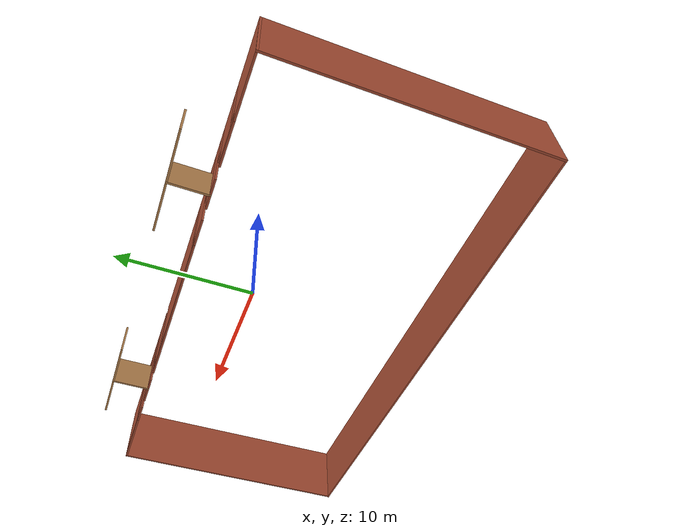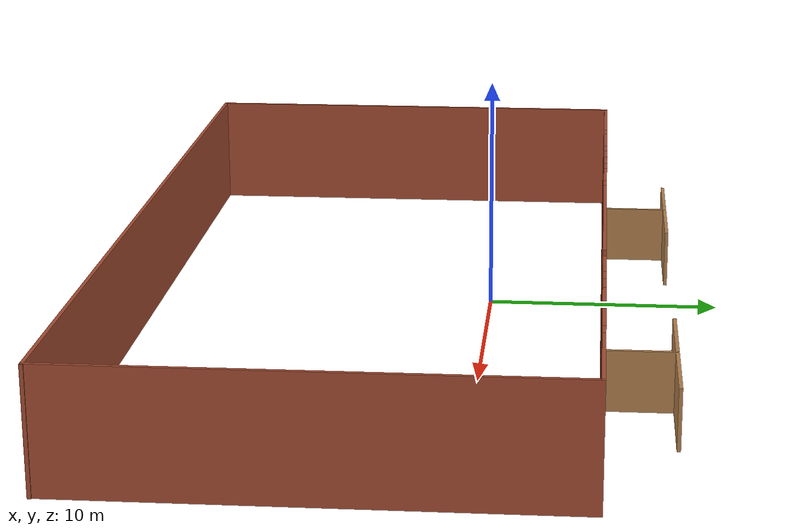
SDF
<?xml version='1.0'?>
<sdf version='1.7'>
  <model name='condos'>
    <pose>2.991 -3.50908 0 0 -0 0</pose>
    <link name='Wall_16'>
      <pose>-14.875 8.50008 0 0 -0 0</pose>
      <visual name='Wall_16_Visual_0'>
        <pose>-2.75921 0 2.5 0 -0 0</pose>
        <geometry>
          <box>
            <size>4.48157 0.15 5</size>
          </box>
        </geometry>
        <material>
          <script>
            <uri>file://media/materials/scripts/gazebo.material</uri>
            <name>Gazebo/Bricks</name>
          </script>
          <ambient>1 1 1 1</ambient>
        </material>
        <meta>
          <layer>0</layer>
        </meta>
      </visual>
      <collision name='Wall_16_Collision_0'>
        <geometry>
          <box>
            <size>4.48157 0.15 5</size>
          </box>
        </geometry>
        <pose>-2.75921 0 2.5 0 -0 0</pose>
      </collision>
      <visual name='Wall_16_Visual_1'>
        <pose>4.31466 0 2.5 0 -0 0</pose>
        <geometry>
          <box>
            <size>1.37068 0.15 5</size>
          </box>
        </geometry>
        <material>
          <script>
            <uri>file://media/materials/scripts/gazebo.material</uri>
            <name>Gazebo/Bricks</name>
          </script>
          <ambient>1 1 1 1</ambient>
        </material>
        <meta>
          <layer>0</layer>
        </meta>
      </visual>
      <collision name='Wall_16_Collision_1'>
        <geometry>
          <box>
            <size>1.37068 0.15 5</size>
          </box>
        </geometry>
        <pose>4.31466 0 2.5 0 -0 0</pose>
      </collision>
      <visual name='Wall_16_Visual_2'>
        <pose>1.10545 0 0.25 0 -0 0</pose>
        <geometry>
          <box>
            <size>3.24775 0.15 0.5</size>
          </box>
        </geometry>
        <material>
          <script>
            <uri>file://media/materials/scripts/gazebo.material</uri>
            <name>Gazebo/Bricks</name>
          </script>
          <ambient>1 1 1 1</ambient>
        </material>
        <meta>
          <layer>0</layer>
        </meta>
      </visual>
      <collision name='Wall_16_Collision_2'>
        <geometry>
          <box>
            <size>3.24775 0.15 0.5</size>
          </box>
        </geometry>
        <pose>1.10545 0 0.25 0 -0 0</pose>
      </collision>
      <visual name='Wall_16_Visual_3'>
        <pose>1.50545 0 2.75 0 -0 0</pose>
        <geometry>
          <box>
            <size>2.44775 0.15 4.5</size>
          </box>
        </geometry>
        <material>
          <script>
            <uri>file://media/materials/scripts/gazebo.material</uri>
            <name>Gazebo/Bricks</name>
          </script>
          <ambient>1 1 1 1</ambient>
        </material>
        <meta>
          <layer>0</layer>
        </meta>
      </visual>
      <collision name='Wall_16_Collision_3'>
        <geometry>
          <box>
            <size>2.44775 0.15 4.5</size>
          </box>
        </geometry>
        <pose>1.50545 0 2.75 0 -0 0</pose>
      </collision>
      <visual name='Wall_16_Visual_4'>
        <pose>-0.118426 0 3.15 0 -0 0</pose>
        <geometry>
          <box>
            <size>0.8 0.15 3.7</size>
          </box>
        </geometry>
        <material>
          <script>
            <uri>file://media/materials/scripts/gazebo.material</uri>
            <name>Gazebo/Bricks</name>
          </script>
          <ambient>1 1 1 1</ambient>
        </material>
        <meta>
          <layer>0</layer>
        </meta>
      </visual>
      <collision name='Wall_16_Collision_4'>
        <geometry>
          <box>
            <size>0.8 0.15 3.7</size>
          </box>
        </geometry>
        <pose>-0.118426 0 3.15 0 -0 0</pose>
      </collision>
      <visual name='Wall_16_Visual_5'>
        <pose>3.17932 0 3.5 0 -0 0</pose>
        <geometry>
          <box>
            <size>0.9 0.15 3</size>
          </box>
        </geometry>
        <material>
          <script>
            <uri>file://media/materials/scripts/gazebo.material</uri>
            <name>Gazebo/Bricks</name>
          </script>
          <ambient>1 1 1 1</ambient>
        </material>
        <meta>
          <layer>0</layer>
        </meta>
      </visual>
      <collision name='Wall_16_Collision_5'>
        <geometry>
          <box>
            <size>0.9 0.15 3</size>
          </box>
        </geometry>
        <pose>3.17932 0 3.5 0 -0 0</pose>
      </collision>
    </link>
    <link name='Wall_17'>
      <collision name='Wall_17_Collision'>
        <geometry>
          <box>
            <size>3 0.15 2.5</size>
          </box>
        </geometry>
        <pose>0 0 1.25 0 -0 0</pose>
      </collision>
      <visual name='Wall_17_Visual'>
        <pose>0 0 1.25 0 -0 0</pose>
        <geometry>
          <box>
            <size>3 0.15 2.5</size>
          </box>
        </geometry>
        <material>
          <script>
            <uri>file://media/materials/scripts/gazebo.material</uri>
            <name>Gazebo/Wood</name>
          </script>
          <ambient>1 1 1 1</ambient>
        </material>
        <meta>
          <layer>0</layer>
        </meta>
      </visual>
      <pose>-9.94997 9.92492 0 0 -0 1.57078</pose>
    </link>
    <link name='Wall_18'>
      <collision name='Wall_18_Collision'>
        <geometry>
          <box>
            <size>4 0.15 2.5</size>
          </box>
        </geometry>
        <pose>0 0 1.25 0 -0 0</pose>
      </collision>
      <visual name='Wall_18_Visual'>
        <pose>0 0 1.25 0 -0 0</pose>
        <geometry>
          <box>
            <size>4 0.15 2.5</size>
          </box>
        </geometry>
        <material>
          <script>
            <uri>file://media/materials/scripts/gazebo.material</uri>
            <name>Gazebo/Wood</name>
          </script>
          <ambient>1 1 1 1</ambient>
        </material>
        <meta>
          <layer>0</layer>
        </meta>
      </visual>
      <pose>-11.8749 11.3498 0 0 -0 3.14159</pose>
    </link>
    <link name='Wall_20'>
      <collision name='Wall_20_Collision'>
        <geometry>
          <box>
            <size>4 0.15 2.5</size>
          </box>
        </geometry>
        <pose>0 0 1.25 0 -0 0</pose>
      </collision>
      <visual name='Wall_20_Visual'>
        <pose>0 0 1.25 0 -0 0</pose>
        <geometry>
          <box>
            <size>4 0.15 2.5</size>
          </box>
        </geometry>
        <material>
          <script>
            <uri>file://media/materials/scripts/gazebo.material</uri>
            <name>Gazebo/Wood</name>
          </script>
          <ambient>1 1 1 1</ambient>
        </material>
        <meta>
          <layer>0</layer>
        </meta>
      </visual>
      <pose>-8.02494 11.3498 0 0 -0 0</pose>
    </link>
    <link name='Wall_22'>
      <pose>-0.024999 8.50008 0 0 -0 0</pose>
      <visual name='Wall_22_Visual_0'>
        <pose>-9.42189 0 2.5 0 -0 0</pose>
        <geometry>
          <box>
            <size>1.15623 0.15 5</size>
          </box>
        </geometry>
        <material>
          <script>
            <uri>file://media/materials/scripts/gazebo.material</uri>
            <name>Gazebo/Bricks</name>
          </script>
          <ambient>1 1 1 1</ambient>
        </material>
        <meta>
          <layer>0</layer>
        </meta>
      </visual>
      <collision name='Wall_22_Collision_0'>
        <geometry>
          <box>
            <size>1.15623 0.15 5</size>
          </box>
        </geometry>
        <pose>-9.42189 0 2.5 0 -0 0</pose>
      </collision>
      <visual name='Wall_22_Visual_1'>
        <pose>-6.84462 0 2.5 0 -0 0</pose>
        <geometry>
          <box>
            <size>2.19831 0.15 5</size>
          </box>
        </geometry>
        <material>
          <script>
            <uri>file://media/materials/scripts/gazebo.material</uri>
            <name>Gazebo/Bricks</name>
          </script>
          <ambient>1 1 1 1</ambient>
        </material>
        <meta>
          <layer>0</layer>
        </meta>
      </visual>
      <collision name='Wall_22_Collision_1'>
        <geometry>
          <box>
            <size>2.19831 0.15 5</size>
          </box>
        </geometry>
        <pose>-6.84462 0 2.5 0 -0 0</pose>
      </collision>
      <visual name='Wall_22_Visual_2'>
        <pose>9.38219 0 2.5 0 -0 0</pose>
        <geometry>
          <box>
            <size>1.23562 0.15 5</size>
          </box>
        </geometry>
        <material>
          <script>
            <uri>file://media/materials/scripts/gazebo.material</uri>
            <name>Gazebo/Bricks</name>
          </script>
          <ambient>1 1 1 1</ambient>
        </material>
        <meta>
          <layer>0</layer>
        </meta>
      </visual>
      <collision name='Wall_22_Collision_2'>
        <geometry>
          <box>
            <size>1.23562 0.15 5</size>
          </box>
        </geometry>
        <pose>9.38219 0 2.5 0 -0 0</pose>
      </collision>
      <visual name='Wall_22_Visual_3'>
        <pose>1.05946 0 0.25 0 -0 0</pose>
        <geometry>
          <box>
            <size>13.6098 0.15 0.5</size>
          </box>
        </geometry>
        <material>
          <script>
            <uri>file://media/materials/scripts/gazebo.material</uri>
            <name>Gazebo/Bricks</name>
          </script>
          <ambient>1 1 1 1</ambient>
        </material>
        <meta>
          <layer>0</layer>
        </meta>
      </visual>
      <collision name='Wall_22_Collision_3'>
        <geometry>
          <box>
            <size>13.6098 0.15 0.5</size>
          </box>
        </geometry>
        <pose>1.05946 0 0.25 0 -0 0</pose>
      </collision>
      <visual name='Wall_22_Visual_4'>
        <pose>0.03207 0 2.75 0 -0 0</pose>
        <geometry>
          <box>
            <size>9.95507 0.15 4.5</size>
          </box>
        </geometry>
        <material>
          <script>
            <uri>file://media/materials/scripts/gazebo.material</uri>
            <name>Gazebo/Bricks</name>
          </script>
          <ambient>1 1 1 1</ambient>
        </material>
        <meta>
          <layer>0</layer>
        </meta>
      </visual>
      <collision name='Wall_22_Collision_4'>
        <geometry>
          <box>
            <size>9.95507 0.15 4.5</size>
          </box>
        </geometry>
        <pose>0.03207 0 2.75 0 -0 0</pose>
      </collision>
      <visual name='Wall_22_Visual_5'>
        <pose>6.83699 0 2.75 0 -0 0</pose>
        <geometry>
          <box>
            <size>2.05477 0.15 4.5</size>
          </box>
        </geometry>
        <material>
          <script>
            <uri>file://media/materials/scripts/gazebo.material</uri>
            <name>Gazebo/Bricks</name>
          </script>
          <ambient>1 1 1 1</ambient>
        </material>
        <meta>
          <layer>0</layer>
        </meta>
      </visual>
      <collision name='Wall_22_Collision_5'>
        <geometry>
          <box>
            <size>2.05477 0.15 4.5</size>
          </box>
        </geometry>
        <pose>6.83699 0 2.75 0 -0 0</pose>
      </collision>
      <visual name='Wall_22_Visual_6'>
        <pose>-5.34547 0 3.15 0 -0 0</pose>
        <geometry>
          <box>
            <size>0.8 0.15 3.7</size>
          </box>
        </geometry>
        <material>
          <script>
            <uri>file://media/materials/scripts/gazebo.material</uri>
            <name>Gazebo/Bricks</name>
          </script>
          <ambient>1 1 1 1</ambient>
        </material>
        <meta>
          <layer>0</layer>
        </meta>
      </visual>
      <collision name='Wall_22_Collision_6'>
        <geometry>
          <box>
            <size>0.8 0.15 3.7</size>
          </box>
        </geometry>
        <pose>-5.34547 0 3.15 0 -0 0</pose>
      </collision>
      <visual name='Wall_22_Visual_7'>
        <pose>5.00961 0 3.15 0 -0 0</pose>
        <geometry>
          <box>
            <size>0 0.15 3.7</size>
          </box>
        </geometry>
        <material>
          <script>
            <uri>file://media/materials/scripts/gazebo.material</uri>
            <name>Gazebo/Bricks</name>
          </script>
          <ambient>1 1 1 1</ambient>
        </material>
        <meta>
          <layer>0</layer>
        </meta>
      </visual>
      <collision name='Wall_22_Collision_7'>
        <geometry>
          <box>
            <size>0 0.15 3.7</size>
          </box>
        </geometry>
        <pose>5.00961 0 3.15 0 -0 0</pose>
      </collision>
      <visual name='Wall_22_Visual_8'>
        <pose>-8.39377 0 3.5 0 -0 0</pose>
        <geometry>
          <box>
            <size>0.9 0.15 3</size>
          </box>
        </geometry>
        <material>
          <script>
            <uri>file://media/materials/scripts/gazebo.material</uri>
            <name>Gazebo/Bricks</name>
          </script>
          <ambient>1 1 1 1</ambient>
        </material>
        <meta>
          <layer>0</layer>
        </meta>
      </visual>
      <collision name='Wall_22_Collision_8'>
        <geometry>
          <box>
            <size>0.9 0.15 3</size>
          </box>
        </geometry>
        <pose>-8.39377 0 3.5 0 -0 0</pose>
      </collision>
      <visual name='Wall_22_Visual_9'>
        <pose>8.31438 0 3.5 0 -0 0</pose>
        <geometry>
          <box>
            <size>0.9 0.15 3</size>
          </box>
        </geometry>
        <material>
          <script>
            <uri>file://media/materials/scripts/gazebo.material</uri>
            <name>Gazebo/Bricks</name>
          </script>
          <ambient>1 1 1 1</ambient>
        </material>
        <meta>
          <layer>0</layer>
        </meta>
      </visual>
      <collision name='Wall_22_Collision_9'>
        <geometry>
          <box>
            <size>0.9 0.15 3</size>
          </box>
        </geometry>
        <pose>8.31438 0 3.5 0 -0 0</pose>
      </collision>
    </link>
    <link name='Wall_25'>
      <collision name='Wall_25_Collision'>
        <geometry>
          <box>
            <size>3 0.15 2.5</size>
          </box>
        </geometry>
        <pose>0 0 1.25 0 -0 0</pose>
      </collision>
      <visual name='Wall_25_Visual'>
        <pose>0 0 1.25 0 -0 0</pose>
        <geometry>
          <box>
            <size>3 0.15 2.5</size>
          </box>
        </geometry>
        <material>
          <script>
            <uri>file://media/materials/scripts/gazebo.material</uri>
            <name>Gazebo/Wood</name>
          </script>
          <ambient>1 1 1 1</ambient>
        </material>
        <meta>
          <layer>0</layer>
        </meta>
      </visual>
      <pose>9.90003 9.92492 0 0 -0 1.57078</pose>
    </link>
    <link name='Wall_26'>
      <collision name='Wall_26_Collision'>
        <geometry>
          <box>
            <size>4 0.15 2.5</size>
          </box>
        </geometry>
        <pose>0 0 1.25 0 -0 0</pose>
      </collision>
      <visual name='Wall_26_Visual'>
        <pose>0 0 1.25 0 -0 0</pose>
        <geometry>
          <box>
            <size>4 0.15 2.5</size>
          </box>
        </geometry>
        <material>
          <script>
            <uri>file://media/materials/scripts/gazebo.material</uri>
            <name>Gazebo/Wood</name>
          </script>
          <ambient>1 1 1 1</ambient>
        </material>
        <meta>
          <layer>0</layer>
        </meta>
      </visual>
      <pose>7.97506 11.3498 0 0 -0 3.14159</pose>
    </link>
    <link name='Wall_28'>
      <collision name='Wall_28_Collision'>
        <geometry>
          <box>
            <size>4 0.15 2.5</size>
          </box>
        </geometry>
        <pose>0 0 1.25 0 -0 0</pose>
      </collision>
      <visual name='Wall_28_Visual'>
        <pose>0 0 1.25 0 -0 0</pose>
        <geometry>
          <box>
            <size>4 0.15 2.5</size>
          </box>
        </geometry>
        <material>
          <script>
            <uri>file://media/materials/scripts/gazebo.material</uri>
            <name>Gazebo/Wood</name>
          </script>
          <ambient>1 1 1 1</ambient>
        </material>
        <meta>
          <layer>0</layer>
        </meta>
      </visual>
      <pose>11.8251 11.3498 0 0 -0 0</pose>
    </link>
    <link name='Wall_30'>
      <pose>14.825 8.50008 0 0 -0 0</pose>
      <visual name='Wall_30_Visual_0'>
        <pose>-4.17231 0 2.5 0 -0 0</pose>
        <geometry>
          <box>
            <size>1.65538 0.15 5</size>
          </box>
        </geometry>
        <material>
          <script>
            <uri>file://media/materials/scripts/gazebo.material</uri>
            <name>Gazebo/Bricks</name>
          </script>
          <ambient>1 1 1 1</ambient>
        </material>
        <meta>
          <layer>0</layer>
        </meta>
      </visual>
      <collision name='Wall_30_Collision_0'>
        <geometry>
          <box>
            <size>1.65538 0.15 5</size>
          </box>
        </geometry>
        <pose>-4.17231 0 2.5 0 -0 0</pose>
      </collision>
      <visual name='Wall_30_Visual_1'>
        <pose>-1.50792 0 2.5 0 -0 0</pose>
        <geometry>
          <box>
            <size>1.8734 0.15 5</size>
          </box>
        </geometry>
        <material>
          <script>
            <uri>file://media/materials/scripts/gazebo.material</uri>
            <name>Gazebo/Bricks</name>
          </script>
          <ambient>1 1 1 1</ambient>
        </material>
        <meta>
          <layer>0</layer>
        </meta>
      </visual>
      <collision name='Wall_30_Collision_1'>
        <geometry>
          <box>
            <size>1.8734 0.15 5</size>
          </box>
        </geometry>
        <pose>-1.50792 0 2.5 0 -0 0</pose>
      </collision>
      <visual name='Wall_30_Visual_2'>
        <pose>2.21439 0 0.25 0 -0 0</pose>
        <geometry>
          <box>
            <size>5.57122 0.15 0.5</size>
          </box>
        </geometry>
        <material>
          <script>
            <uri>file://media/materials/scripts/gazebo.material</uri>
            <name>Gazebo/Bricks</name>
          </script>
          <ambient>1 1 1 1</ambient>
        </material>
        <meta>
          <layer>0</layer>
        </meta>
      </visual>
      <collision name='Wall_30_Collision_2'>
        <geometry>
          <box>
            <size>5.57122 0.15 0.5</size>
          </box>
        </geometry>
        <pose>2.21439 0 0.25 0 -0 0</pose>
      </collision>
      <visual name='Wall_30_Visual_3'>
        <pose>2.61439 0 2.75 0 -0 0</pose>
        <geometry>
          <box>
            <size>4.77122 0.15 4.5</size>
          </box>
        </geometry>
        <material>
          <script>
            <uri>file://media/materials/scripts/gazebo.material</uri>
            <name>Gazebo/Bricks</name>
          </script>
          <ambient>1 1 1 1</ambient>
        </material>
        <meta>
          <layer>0</layer>
        </meta>
      </visual>
      <collision name='Wall_30_Collision_3'>
        <geometry>
          <box>
            <size>4.77122 0.15 4.5</size>
          </box>
        </geometry>
        <pose>2.61439 0 2.75 0 -0 0</pose>
      </collision>
      <visual name='Wall_30_Visual_4'>
        <pose>-0.171219 0 3.15 0 -0 0</pose>
        <geometry>
          <box>
            <size>0.8 0.15 3.7</size>
          </box>
        </geometry>
        <material>
          <script>
            <uri>file://media/materials/scripts/gazebo.material</uri>
            <name>Gazebo/Bricks</name>
          </script>
          <ambient>1 1 1 1</ambient>
        </material>
        <meta>
          <layer>0</layer>
        </meta>
      </visual>
      <collision name='Wall_30_Collision_4'>
        <geometry>
          <box>
            <size>0.8 0.15 3.7</size>
          </box>
        </geometry>
        <pose>-0.171219 0 3.15 0 -0 0</pose>
      </collision>
      <visual name='Wall_30_Visual_5'>
        <pose>-2.89462 0 3.5 0 -0 0</pose>
        <geometry>
          <box>
            <size>0.9 0.15 3</size>
          </box>
        </geometry>
        <material>
          <script>
            <uri>file://media/materials/scripts/gazebo.material</uri>
            <name>Gazebo/Bricks</name>
          </script>
          <ambient>1 1 1 1</ambient>
        </material>
        <meta>
          <layer>0</layer>
        </meta>
      </visual>
      <collision name='Wall_30_Collision_5'>
        <geometry>
          <box>
            <size>0.9 0.15 3</size>
          </box>
        </geometry>
        <pose>-2.89462 0 3.5 0 -0 0</pose>
      </collision>
    </link>
    <link name='Wall_32'>
      <collision name='Wall_32_Collision'>
        <geometry>
          <box>
            <size>20 0.15 5</size>
          </box>
        </geometry>
        <pose>0 0 2.5 0 -0 0</pose>
      </collision>
      <visual name='Wall_32_Visual'>
        <pose>0 0 2.5 0 -0 0</pose>
        <geometry>
          <box>
            <size>20 0.15 5</size>
          </box>
        </geometry>
        <material>
          <script>
            <uri>file://media/materials/scripts/gazebo.material</uri>
            <name>Gazebo/Bricks</name>
          </script>
          <ambient>1 1 1 1</ambient>
        </material>
        <meta>
          <layer>0</layer>
        </meta>
      </visual>
      <pose>-19.8 -1.42492 0 0 -0 -1.5708</pose>
    </link>
    <link name='Wall_34'>
      <collision name='Wall_34_Collision'>
        <geometry>
          <box>
            <size>20 0.15 5</size>
          </box>
        </geometry>
        <pose>0 0 2.5 0 -0 0</pose>
      </collision>
      <visual name='Wall_34_Visual'>
        <pose>0 0 2.5 0 -0 0</pose>
        <geometry>
          <box>
            <size>20 0.15 5</size>
          </box>
        </geometry>
        <material>
          <script>
            <uri>file://media/materials/scripts/gazebo.material</uri>
            <name>Gazebo/Bricks</name>
          </script>
          <ambient>1 1 1 1</ambient>
        </material>
        <meta>
          <layer>0</layer>
        </meta>
      </visual>
      <pose>19.75 -1.42492 0 0 -0 -1.5708</pose>
    </link>
    <link name='Wall_36'>
      <collision name='Wall_36_Collision'>
        <geometry>
          <box>
            <size>39.75 0.15 5</size>
          </box>
        </geometry>
        <pose>0 0 2.5 0 -0 0</pose>
      </collision>
      <visual name='Wall_36_Visual'>
        <pose>0 0 2.5 0 -0 0</pose>
        <geometry>
          <box>
            <size>39.75 0.15 5</size>
          </box>
        </geometry>
        <material>
          <script>
            <uri>file://media/materials/scripts/gazebo.material</uri>
            <name>Gazebo/Bricks</name>
          </script>
          <ambient>1 1 1 1</ambient>
        </material>
        <meta>
          <layer>0</layer>
        </meta>
      </visual>
      <pose>1e-06 -11.3499 0 0 -0 0</pose>
    </link>
    <static>1</static>
  </model>
</sdf>
